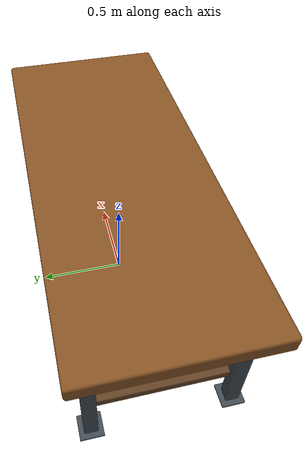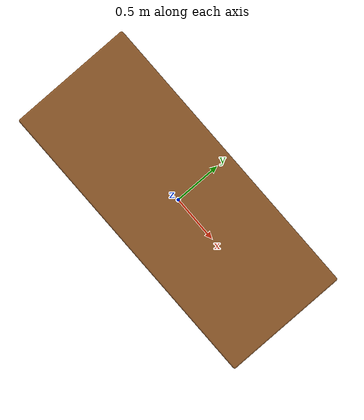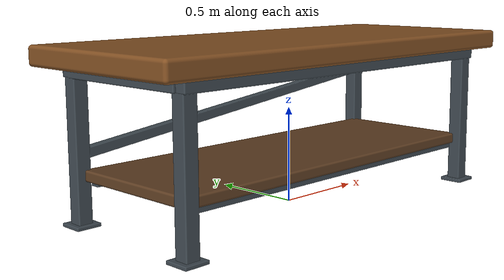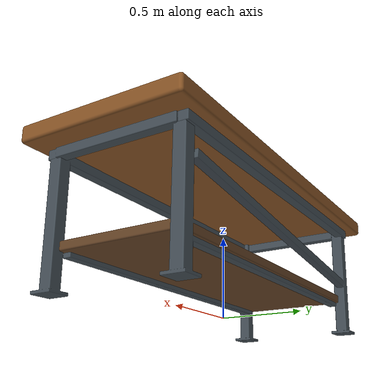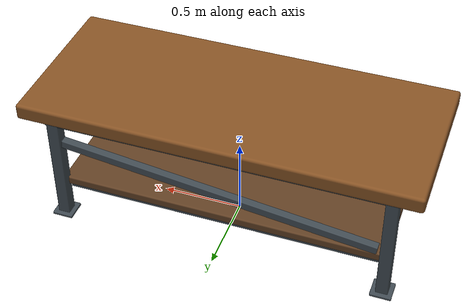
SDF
<?xml version="1.0"?>
<sdf version="1.6"><model name="workbench"><static>true</static><link name="link">
<visual name="wood_top"><geometry><mesh><uri>model://workbench/meshes/top_light_wood.stl</uri></mesh></geometry><material>

    <ambient>0.25 0.15 0.07 1</ambient>
    <diffuse>0.52 0.32 0.14 1</diffuse>
    <specular>0.03 0.03 0.03 1</specular>
</material></visual>
<visual name="steel_frame"><geometry><mesh><uri>model://workbench/meshes/steel_frame.stl</uri></mesh></geometry><material><ambient>0.250 0.290 0.320 1</ambient><diffuse>0.250 0.290 0.320 1</diffuse><specular>0.10 0.10 0.10 1</specular></material></visual>
<visual name="lower_shelf"><geometry><mesh><uri>model://workbench/meshes/lower_shelf.stl</uri></mesh></geometry><material><ambient>0.380 0.250 0.140 1</ambient><diffuse>0.380 0.250 0.140 1</diffuse><specular>0.10 0.10 0.10 1</specular></material></visual>
<collision name="top_collision"><pose>0 0 0.82 0 0 0</pose><geometry><box><size>2.4 1.0 0.10</size></box></geometry></collision>
<collision name="leg1_collision"><pose>-1.02 -0.39 0.39 0 0 0</pose><geometry><box><size>0.075 0.075 0.78</size></box></geometry></collision>
<collision name="leg2_collision"><pose>1.02 -0.39 0.39 0 0 0</pose><geometry><box><size>0.075 0.075 0.78</size></box></geometry></collision>
<collision name="leg3_collision"><pose>-1.02 0.39 0.39 0 0 0</pose><geometry><box><size>0.075 0.075 0.78</size></box></geometry></collision>
<collision name="leg4_collision"><pose>1.02 0.39 0.39 0 0 0 0</pose><geometry><box><size>0.075 0.075 0.78</size></box></geometry></collision>
<collision name="lower_shelf_collision"><pose>0 0 0.25 0 0 0</pose><geometry><box><size>2.03 0.76 0.055</size></box></geometry></collision>
</link></model></sdf>
